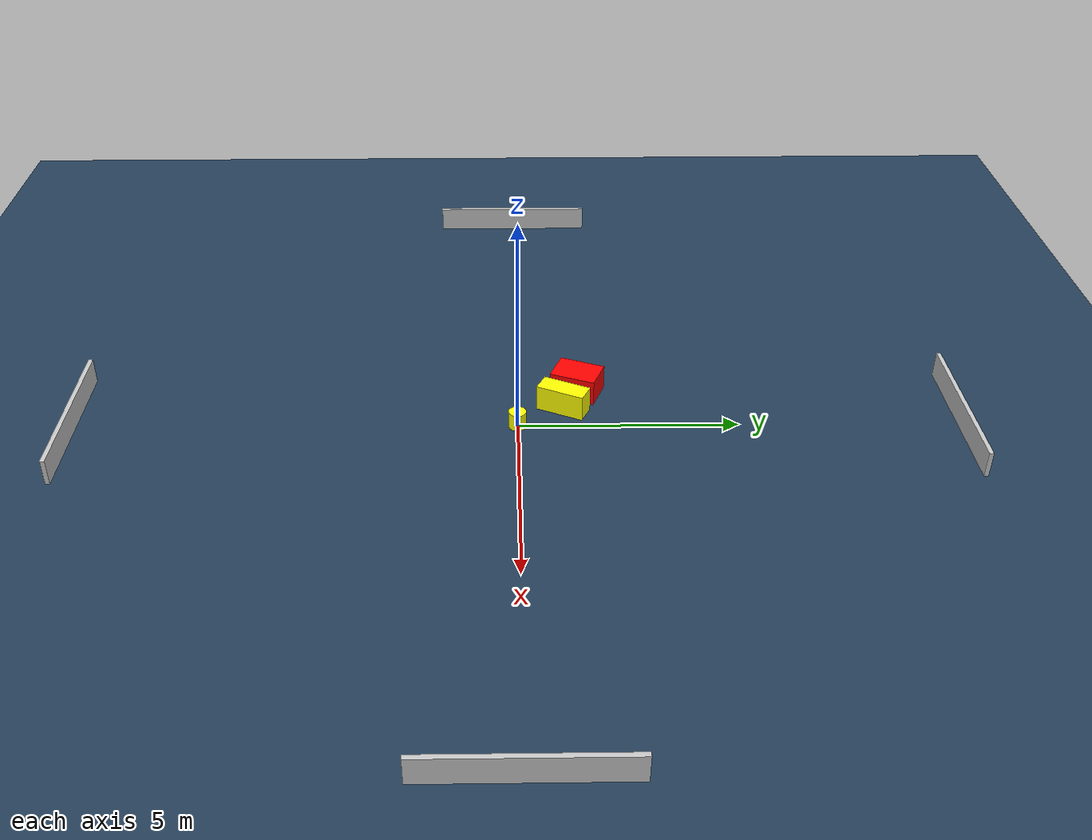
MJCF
<?xml version="1.0" ?>
<mujoco model="generated_environment">
  <option timestep="0.01" integrator="RK4" cone="elliptic"/>
  <default>
    <geom density="1"/>
  </default>
  <asset>
    <texture builtin="gradient" height="3072" name="skybox" rgb1="0.3 0.5 0.7" rgb2="0 0 0" type="skybox" width="512"/>
    <texture builtin="checker" height="300" name="groundplane" rgb1="0.2 0.3 0.4" rgb2="0.1 0.2 0.3" type="2d" width="300"/>
    <material name="groundplane" reflectance="0.2" texrepeat="5 5" texture="groundplane"/>
  </asset>
  <worldbody>
    <light dir="0 0 -1" directional="true" pos="0 0 1.5"/>
    <geom condim="3" friction="0.5 0.005 0.001" material="groundplane" name="floor" pos="0 0 0" size="0 0 0.05" type="plane"/>
    <body name="walls">
      <geom name="wall_1" condim="4" pos="-10.0 0.0 0.3" rgba="0.800000011920929 0.800000011920929 0.800000011920929 1.0" size="0.05 2.0 0.3" type="box"/>
      <geom name="wall_2" condim="4" pos="10.0 0.0 0.3" rgba="0.800000011920929 0.800000011920929 0.800000011920929 1.0" size="0.05 2.0 0.3" type="box"/>
      <geom name="wall_3" condim="4" pos="0.0 -10.0 0.3" rgba="0.800000011920929 0.800000011920929 0.800000011920929 1.0" size="2.0 0.05 0.3" type="box"/>
      <geom name="wall_4" condim="4" pos="0.0 10.0 0.3" rgba="0.800000011920929 0.800000011920929 0.800000011920929 1.0" size="2.0 0.05 0.3" type="box"/>
    </body>
    <body name="robot">
      <joint name="joint_x" type="slide" pos="0 0 0" axis="1 0 0"/>
      <joint name="joint_y" type="slide" pos="0 0 0" axis="0 1 0"/>
      <geom name="robot" type="cylinder" pos="0.0 0.0 0.2" size="0.2 0.2 0.0" mass="5.0" friction="1.0 0.005 0.0001" condim="4" rgba="1.0 1.0 0.0 1.0"/>
    </body>
    <body name="obstacle_1_movable">
      <geom name="obstacle_1_movable" condim="4" pos="-0.6654147331033449 1.0572099011326357 0.3" euler="0 0 334.2283826101679" friction="0.0 0.005 0.001" rgba="1.0 1.0 0.0 1.0" size="0.23363200635207787 0.5635066464399846 0.3" type="box" mass="0.1"/>
      <joint type="free"/>
    </body>
    <body name="obstacle_2_static">
      <geom name="obstacle_2_static" condim="4" pos="-1.3841608002090877 1.4075686576134279 0.3" euler="0 0 247.98639601917154" friction="0.0 0.005 0.001" rgba="1.0 0.0 0.0 1.0" size="0.5317888744732384 0.3809664153039217 0.3" type="box"/>
    </body>
  </worldbody>
  <actuator>
    <motor name="actuator_x" joint="joint_x" gear="1" ctrlrange="-1 1"/>
    <motor name="actuator_y" joint="joint_y" gear="1" ctrlrange="-1 1"/>
  </actuator>
</mujoco>
